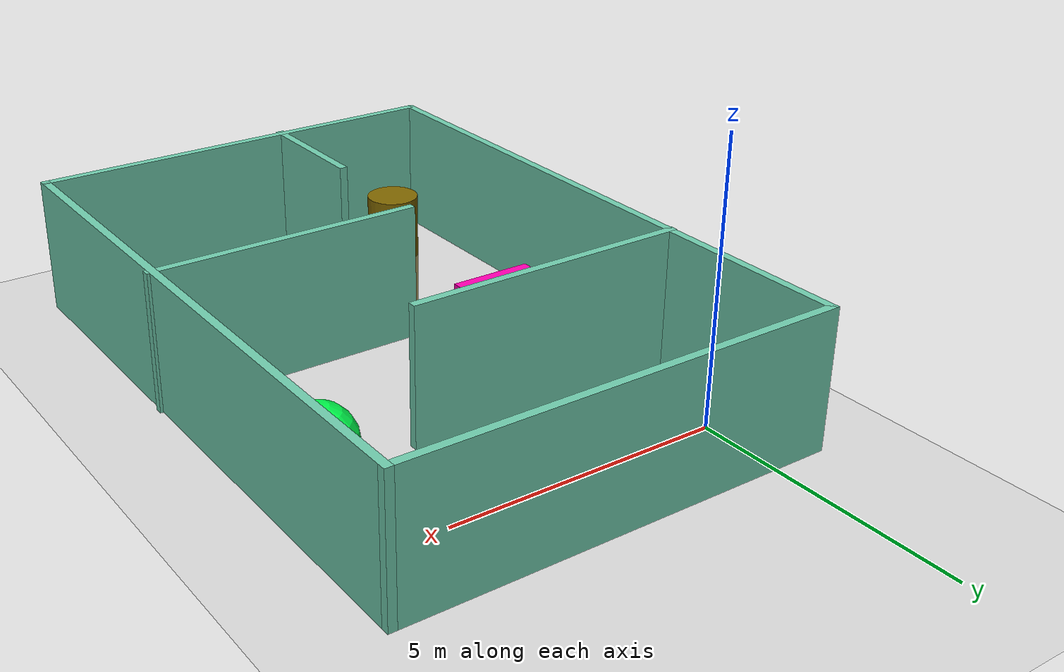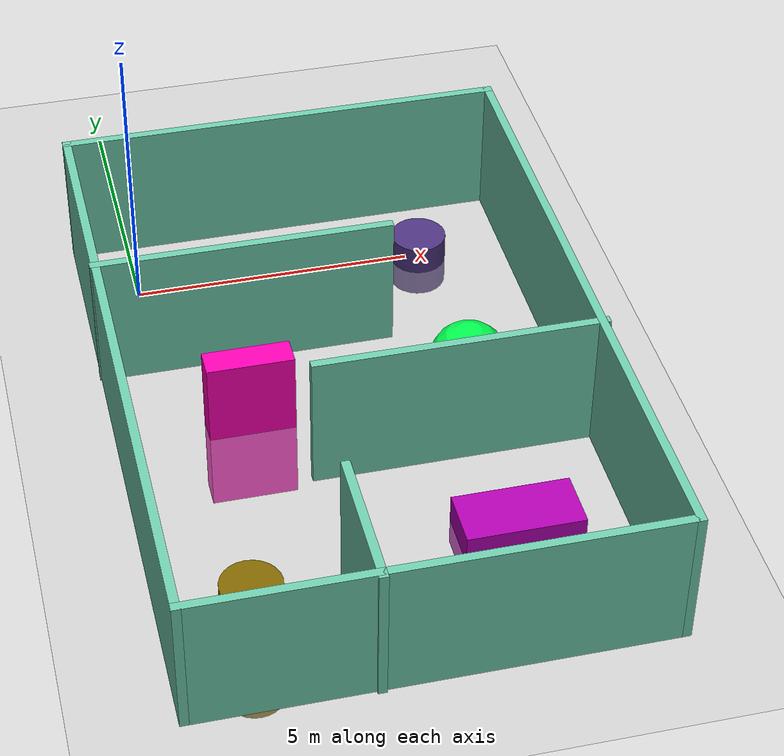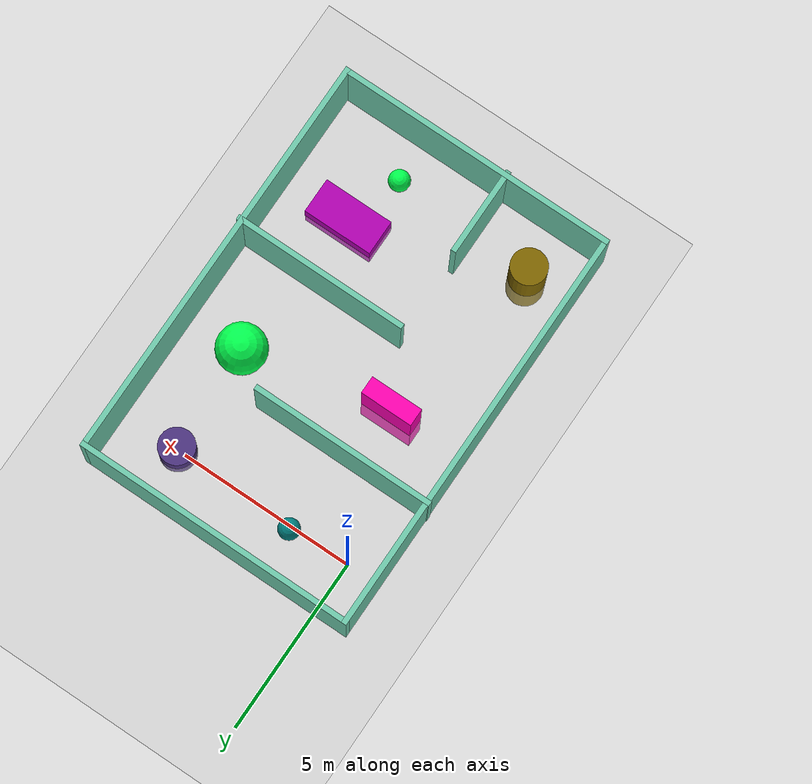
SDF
<sdf version="1.7">
 <world name="default">
  <light name="sun" type="directional">
   <pose>0 0 10 0 -0 0</pose>
   <diffuse>0.8 0.8 0.8 1</diffuse>
   <specular>0.2 0.2 0.2 1</specular>
   <attenuation>
    <range>1000</range>
    <constant>0.9</constant>
    <linear>0.01</linear>
    <quadratic>0.001</quadratic>
   </attenuation>
   <direction>-0.5 0.1 -0.9</direction>
   <spot><inner_angle>0</inner_angle><outer_angle>0</outer_angle><falloff>0</falloff></spot>
  </light>
  <model name="ground_plane">
   <static>1</static>
   <link name="link">
    <collision name="collision">
     <geometry><plane><normal>0 0 1</normal><size>100 100</size></plane></geometry>
     <surface><friction><ode><mu>100</mu><mu2>50</mu2></ode></friction></surface>
    </collision>
    <visual name="visual">
     <cast_shadows>0</cast_shadows>
     <geometry><plane><normal>0 0 1</normal><size>100 100</size></plane></geometry>
     <material>
      <script><uri>file://media/materials/scripts/gazebo.material</uri><name>Gazebo/Grey</name></script>
     </material>
    </visual>
   </link>
  </model>
  <gravity>0 0 -9.8</gravity>
  <magnetic_field>6e-06 2.3e-05 -4.2e-05</magnetic_field>
  <atmosphere type="adiabatic"/>
  <physics type="ode">
   <max_step_size>0.001</max_step_size>
   <real_time_factor>1</real_time_factor>
   <real_time_update_rate>1000</real_time_update_rate>
  </physics>
  <scene><ambient>0.4 0.4 0.4 1</ambient><background>0.7 0.7 0.7 1</background><shadows>1</shadows></scene>
  <spherical_coordinates>
   <surface_model>EARTH_WGS84</surface_model>
   <latitude_deg>0</latitude_deg>
   <longitude_deg>0</longitude_deg>
   <elevation>0</elevation>
   <heading_deg>0</heading_deg>
  </spherical_coordinates>
  <model name="purple_box">
   <link name="link">
    <inertial>
     <mass>1</mass>
     <inertia>
      <ixx>0.166667</ixx>
      <ixy>0</ixy>
      <ixz>0</ixz>
      <iyy>0.166667</iyy>
      <iyz>0</iyz>
      <izz>0.166667</izz>
     </inertia>
    </inertial>
    <visual name="visual">
     <geometry><box><size>2 1 1</size></box></geometry>
     <material>
      <script><name>Gazebo/Grey</name><uri>file://media/materials/scripts/gazebo.material</uri></script>
      <shader type="pixel"><normal_map>__default__</normal_map></shader>
      <ambient>0 1 1 1</ambient>
      <diffuse>0.7 0 0.7 1</diffuse>
      <specular>0.01 0.01 0.01 1</specular>
      <emissive>0 0 0 1</emissive>
     </material>
     <pose>0 -0.5 0 0 -0 0</pose>
    </visual>
    <collision name="collision">
     <pose>0 -0.5 0 0 -0 0</pose>
     <geometry><box><size>2 1 1</size></box></geometry>
     <surface>
      <friction>
       <ode><mu>1</mu><mu2>1</mu2><fdir1>0 0 0</fdir1><slip1>0</slip1><slip2>0</slip2></ode>
       <torsional>
        <coefficient>1</coefficient>
        <patch_radius>0</patch_radius>
        <surface_radius>0</surface_radius>
        <use_patch_radius>1</use_patch_radius>
        <ode><slip>0</slip></ode>
       </torsional>
      </friction>
      <bounce><restitution_coefficient>0</restitution_coefficient><threshold>1e+06</threshold></bounce>
      <contact>
       <collide_without_contact>0</collide_without_contact>
       <collide_without_contact_bitmask>1</collide_without_contact_bitmask>
       <collide_bitmask>1</collide_bitmask>
       <ode>
        <soft_cfm>0</soft_cfm>
        <soft_erp>0.2</soft_erp>
        <kp>1e+13</kp>
        <kd>1</kd>
        <max_vel>0.01</max_vel>
        <min_depth>0</min_depth>
       </ode>
       <bullet>
        <split_impulse>1</split_impulse>
        <split_impulse_penetration_threshold>-0.01</split_impulse_penetration_threshold>
        <soft_cfm>0</soft_cfm>
        <soft_erp>0.2</soft_erp>
        <kp>1e+13</kp>
        <kd>1</kd>
       </bullet>
      </contact>
     </surface>
    </collision>
   </link>
   <static>0</static>
   <pose>5.02659 -6.90726 0 0 -0 0</pose>
  </model>
  <model name="pink_box">
   <link name="link">
    <inertial>
     <mass>1</mass>
     <inertia>
      <ixx>0.166667</ixx>
      <ixy>0</ixy>
      <ixz>0</ixz>
      <iyy>0.166667</iyy>
      <iyz>0</iyz>
      <izz>0.166667</izz>
     </inertia>
    </inertial>
    <visual name="visual">
     <geometry><box><size>1.5 0.5 3</size></box></geometry>
     <material>
      <script><name>Gazebo/Grey</name><uri>file://media/materials/scripts/gazebo.material</uri></script>
      <shader type="pixel"><normal_map>__default__</normal_map></shader>
      <ambient>1 0.1 0.8 0.7</ambient>
      <diffuse>1 0 0.7 1</diffuse>
      <specular>0.01 0.11 0.01 1</specular>
      <emissive>0 0 0 1</emissive>
     </material>
    </visual>
    <collision name="collision">
     <geometry><box><size>1.5 0.5 3</size></box></geometry>
     <surface>
      <friction>
       <ode><mu>1</mu><mu2>1</mu2><fdir1>0 0 0</fdir1><slip1>0</slip1><slip2>0</slip2></ode>
       <torsional>
        <coefficient>1</coefficient>
        <patch_radius>0</patch_radius>
        <surface_radius>0</surface_radius>
        <use_patch_radius>1</use_patch_radius>
        <ode><slip>0</slip></ode>
       </torsional>
      </friction>
      <bounce><restitution_coefficient>0</restitution_coefficient><threshold>1e+06</threshold></bounce>
      <contact>
       <collide_without_contact>0</collide_without_contact>
       <collide_without_contact_bitmask>1</collide_without_contact_bitmask>
       <collide_bitmask>1</collide_bitmask>
       <ode>
        <soft_cfm>0</soft_cfm>
        <soft_erp>0.2</soft_erp>
        <kp>1e+13</kp>
        <kd>1</kd>
        <max_vel>0.01</max_vel>
        <min_depth>0</min_depth>
       </ode>
       <bullet>
        <split_impulse>1</split_impulse>
        <split_impulse_penetration_threshold>-0.01</split_impulse_penetration_threshold>
        <soft_cfm>0</soft_cfm>
        <soft_erp>0.2</soft_erp>
        <kp>1e+13</kp>
        <kd>1</kd>
       </bullet>
      </contact>
     </surface>
    </collision>
   </link>
   <static>0</static>
   <pose>1.31029 -3.89207 0 0 -0 0</pose>
  </model>
  <model name="skin_primastic">
   <link name="link">
    <inertial>
     <mass>1</mass>
     <inertia><ixx>0.145833</ixx><ixy>0</ixy><ixz>0</ixz><iyy>0.145833</iyy><iyz>0</iyz><izz>0.125</izz></inertia>
    </inertial>
    <visual name="visual">
     <geometry><cylinder><radius>0.5</radius><length>1</length></cylinder></geometry>
     <material>
      <script><name>Gazebo/Grey</name><uri>file://media/materials/scripts/gazebo.material</uri></script>
      <shader type="pixel"><normal_map>__default__</normal_map></shader>
      <ambient>0.3 0.2 0.5 0</ambient>
      <diffuse>0.7 0.7 0.7 1</diffuse>
      <specular>0.01 0.01 0.01 1</specular>
      <emissive>0 0 0 1</emissive>
     </material>
    </visual>
    <collision name="collision">
     <geometry><cylinder><radius>0.5</radius><length>1</length></cylinder></geometry>
     <surface>
      <friction>
       <ode><mu>1</mu><mu2>1</mu2><fdir1>0 0 0</fdir1><slip1>0</slip1><slip2>0</slip2></ode>
       <torsional>
        <coefficient>1</coefficient>
        <patch_radius>0</patch_radius>
        <surface_radius>0</surface_radius>
        <use_patch_radius>1</use_patch_radius>
        <ode><slip>0</slip></ode>
       </torsional>
      </friction>
      <bounce><restitution_coefficient>0</restitution_coefficient><threshold>1e+06</threshold></bounce>
      <contact>
       <collide_without_contact>0</collide_without_contact>
       <collide_without_contact_bitmask>1</collide_without_contact_bitmask>
       <collide_bitmask>1</collide_bitmask>
       <ode>
        <soft_cfm>0</soft_cfm>
        <soft_erp>0.2</soft_erp>
        <kp>1e+13</kp>
        <kd>1</kd>
        <max_vel>0.01</max_vel>
        <min_depth>0</min_depth>
       </ode>
       <bullet>
        <split_impulse>1</split_impulse>
        <split_impulse_penetration_threshold>-0.01</split_impulse_penetration_threshold>
        <soft_cfm>0</soft_cfm>
        <soft_erp>0.2</soft_erp>
        <kp>1e+13</kp>
        <kd>1</kd>
       </bullet>
      </contact>
     </surface>
    </collision>
   </link>
   <static>0</static>
   <pose>5.25099 -0.022483 0 0 -0 0</pose>
  </model>
  <model name="green_box_03">
   <link name="link">
    <inertial>
     <mass>1</mass>
     <inertia><ixx>0.1</ixx><ixy>0</ixy><ixz>0</ixz><iyy>0.1</iyy><iyz>0</iyz><izz>0.1</izz></inertia>
    </inertial>
    <visual name="visual">
     <geometry><sphere><radius>0.3</radius></sphere></geometry>
     <material>
      <script><name>Gazebo/Grey</name><uri>file://media/materials/scripts/gazebo.material</uri></script>
      <shader type="pixel"><normal_map>__default__</normal_map></shader>
      <ambient>0 0.5 0.5 1</ambient>
      <diffuse>0.7 0.7 0.7 1</diffuse>
      <specular>0.01 0.01 0.01 1</specular>
      <emissive>0 0 0 1</emissive>
     </material>
    </visual>
    <collision name="collision">
     <geometry><sphere><radius>0.3</radius></sphere></geometry>
     <surface>
      <friction>
       <ode><mu>1</mu><mu2>1</mu2><fdir1>0 0 0</fdir1><slip1>0</slip1><slip2>0</slip2></ode>
       <torsional>
        <coefficient>1</coefficient>
        <patch_radius>0</patch_radius>
        <surface_radius>0</surface_radius>
        <use_patch_radius>1</use_patch_radius>
        <ode><slip>0</slip></ode>
       </torsional>
      </friction>
      <bounce><restitution_coefficient>0</restitution_coefficient><threshold>1e+06</threshold></bounce>
      <contact>
       <collide_without_contact>0</collide_without_contact>
       <collide_without_contact_bitmask>1</collide_without_contact_bitmask>
       <collide_bitmask>1</collide_bitmask>
       <ode>
        <soft_cfm>0</soft_cfm>
        <soft_erp>0.2</soft_erp>
        <kp>1e+13</kp>
        <kd>1</kd>
        <max_vel>0.01</max_vel>
        <min_depth>0</min_depth>
       </ode>
       <bullet>
        <split_impulse>1</split_impulse>
        <split_impulse_penetration_threshold>-0.01</split_impulse_penetration_threshold>
        <soft_cfm>0</soft_cfm>
        <soft_erp>0.2</soft_erp>
        <kp>1e+13</kp>
        <kd>1</kd>
       </bullet>
      </contact>
     </surface>
    </collision>
   </link>
   <static>0</static>
   <pose>1.74657 0.065616 0 0 -0 0</pose>
  </model>
  <model name="green_ball_clone">
   <link name="link">
    <inertial>
     <mass>1</mass>
     <inertia><ixx>0.1</ixx><ixy>0</ixy><ixz>0</ixz><iyy>0.1</iyy><iyz>0</iyz><izz>0.1</izz></inertia>
    </inertial>
    <visual name="visual">
     <geometry><sphere><radius>0.3</radius></sphere></geometry>
     <material>
      <script><name>Gazebo/Grey</name><uri>file://media/materials/scripts/gazebo.material</uri></script>
      <shader type="pixel"><normal_map>__default__</normal_map></shader>
      <ambient>0 1 0.3 1</ambient>
      <diffuse>0.7 0.7 0.7 1</diffuse>
      <specular>0.01 0.01 0.01 1</specular>
      <emissive>0 0 0 1</emissive>
     </material>
    </visual>
    <collision name="collision">
     <geometry><sphere><radius>0.3</radius></sphere></geometry>
     <surface>
      <friction>
       <ode><mu>1</mu><mu2>1</mu2><fdir1>0 0 0</fdir1><slip1>0</slip1><slip2>0</slip2></ode>
       <torsional>
        <coefficient>1</coefficient>
        <patch_radius>0</patch_radius>
        <surface_radius>0</surface_radius>
        <use_patch_radius>1</use_patch_radius>
        <ode><slip>0</slip></ode>
       </torsional>
      </friction>
      <bounce><restitution_coefficient>0</restitution_coefficient><threshold>1e+06</threshold></bounce>
      <contact>
       <collide_without_contact>0</collide_without_contact>
       <collide_without_contact_bitmask>1</collide_without_contact_bitmask>
       <collide_bitmask>1</collide_bitmask>
       <ode>
        <soft_cfm>0</soft_cfm>
        <soft_erp>0.2</soft_erp>
        <kp>1e+13</kp>
        <kd>1</kd>
        <max_vel>0.01</max_vel>
        <min_depth>0</min_depth>
       </ode>
       <bullet>
        <split_impulse>1</split_impulse>
        <split_impulse_penetration_threshold>-0.01</split_impulse_penetration_threshold>
        <soft_cfm>0</soft_cfm>
        <soft_erp>0.2</soft_erp>
        <kp>1e+13</kp>
        <kd>1</kd>
       </bullet>
      </contact>
     </surface>
    </collision>
   </link>
   <static>0</static>
   <pose>4.53037 -9.03745 0 0 -0 0</pose>
  </model>
  <model name="maplevel2">
   <pose>3.00962 -4.35923 0 0 -0 0</pose>
   <link name="Wall_30">
    <collision name="Wall_30_Collision">
     <geometry><box><size>11.75 0.15 2.5</size></box></geometry>
     <pose>0 0 1.25 0 -0 0</pose>
    </collision>
    <visual name="Wall_30_Visual">
     <pose>0 0 1.25 0 -0 0</pose>
     <geometry><box><size>11.75 0.15 2.5</size></box></geometry>
     <material>
      <script><uri>file://media/materials/scripts/gazebo.material</uri><name>Gazebo/Grey</name></script>
      <ambient>0.435294 0.796078 0.67451 1</ambient>
     </material>
     <meta><layer>0</layer></meta>
    </visual>
    <pose>-3.94031 0.025487 0 0 -0 -1.5708</pose>
   </link>
   <link name="Wall_31">
    <collision name="Wall_31_Collision">
     <geometry><box><size>8 0.15 2.5</size></box></geometry>
     <pose>0 0 1.25 0 -0 0</pose>
    </collision>
    <visual name="Wall_31_Visual">
     <pose>0 0 1.25 0 -0 0</pose>
     <geometry><box><size>8 0.15 2.5</size></box></geometry>
     <material>
      <script><uri>file://media/materials/scripts/gazebo.material</uri><name>Gazebo/Grey</name></script>
      <ambient>0.435294 0.796078 0.67451 1</ambient>
     </material>
     <meta><layer>0</layer></meta>
    </visual>
    <pose>-0.015308 -5.77451 0 0 -0 0</pose>
   </link>
   <link name="Wall_35">
    <collision name="Wall_35_Collision">
     <geometry><box><size>11.75 0.15 2.5</size></box></geometry>
     <pose>0 0 1.25 0 -0 0</pose>
    </collision>
    <visual name="Wall_35_Visual">
     <pose>0 0 1.25 0 -0 0</pose>
     <geometry><box><size>11.75 0.15 2.5</size></box></geometry>
     <material>
      <script><uri>file://media/materials/scripts/gazebo.material</uri><name>Gazebo/Grey</name></script>
      <ambient>0.435294 0.796078 0.67451 1</ambient>
     </material>
     <meta><layer>0</layer></meta>
    </visual>
    <pose>3.90969 0.025487 0 0 -0 1.5708</pose>
   </link>
   <link name="Wall_36">
    <collision name="Wall_36_Collision">
     <geometry><box><size>8 0.15 2.5</size></box></geometry>
     <pose>0 0 1.25 0 -0 0</pose>
    </collision>
    <visual name="Wall_36_Visual">
     <pose>0 0 1.25 0 -0 0</pose>
     <geometry><box><size>8 0.15 2.5</size></box></geometry>
     <material>
      <script><uri>file://media/materials/scripts/gazebo.material</uri><name>Gazebo/Grey</name></script>
      <ambient>0.435294 0.796078 0.67451 1</ambient>
     </material>
     <meta><layer>0</layer></meta>
    </visual>
    <pose>-0.015308 5.82549 0 0 -0 3.14159</pose>
   </link>
   <link name="Wall_38">
    <collision name="Wall_38_Collision">
     <geometry><box><size>5.25 0.15 2.5</size></box></geometry>
     <pose>0 0 1.25 0 -0 0</pose>
    </collision>
    <visual name="Wall_38_Visual">
     <pose>0 0 1.25 0 -0 0</pose>
     <geometry><box><size>5.25 0.15 2.5</size></box></geometry>
     <material>
      <script><uri>file://media/materials/scripts/gazebo.material</uri><name>Gazebo/Grey</name></script>
      <ambient>0.435294 0.796078 0.67451 1</ambient>
     </material>
     <meta><layer>0</layer></meta>
    </visual>
    <pose>-1.41205 2.22937 0 0 -0 0</pose>
   </link>
   <link name="Wall_40">
    <collision name="Wall_40_Collision">
     <geometry><box><size>5 0.15 2.5</size></box></geometry>
     <pose>0 0 1.25 0 -0 0</pose>
    </collision>
    <visual name="Wall_40_Visual">
     <pose>0 0 1.25 0 -0 0</pose>
     <geometry><box><size>5 0.15 2.5</size></box></geometry>
     <material>
      <script><uri>file://media/materials/scripts/gazebo.material</uri><name>Gazebo/Grey</name></script>
      <ambient>0.435294 0.796078 0.67451 1</ambient>
     </material>
     <meta><layer>0</layer></meta>
    </visual>
    <pose>1.53705 -1.09195 0 0 -0 3.14159</pose>
   </link>
   <link name="Wall_42">
    <collision name="Wall_42_Collision">
     <geometry><box><size>2.5 0.15 2.5</size></box></geometry>
     <pose>0 0 1.25 0 -0 0</pose>
    </collision>
    <visual name="Wall_42_Visual">
     <pose>0 0 1.25 0 -0 0</pose>
     <geometry><box><size>2.5 0.15 2.5</size></box></geometry>
     <material>
      <script><uri>file://media/materials/scripts/gazebo.material</uri><name>Gazebo/Grey</name></script>
      <ambient>0.435294 0.796078 0.67451 1</ambient>
     </material>
     <meta><layer>0</layer></meta>
    </visual>
    <pose>-0.928401 -4.65049 0 0 -0 1.5708</pose>
   </link>
   <static>1</static>
  </model>
  <model name="green_ball2">
   <link name="link">
    <inertial>
     <mass>1</mass>
     <inertia><ixx>0.1</ixx><ixy>0</ixy><ixz>0</ixz><iyy>0.1</iyy><iyz>0</iyz><izz>0.1</izz></inertia>
    </inertial>
    <visual name="visual">
     <geometry><sphere><radius>0.7</radius></sphere></geometry>
     <material>
      <script><name>Gazebo/Grey</name><uri>file://media/materials/scripts/gazebo.material</uri></script>
      <shader type="pixel"><normal_map>__default__</normal_map></shader>
      <ambient>0 1 0.3 1</ambient>
      <diffuse>0.7 0.7 0.7 1</diffuse>
      <specular>0.01 0.01 0.01 1</specular>
      <emissive>0 0 0 1</emissive>
     </material>
    </visual>
    <collision name="collision">
     <geometry><sphere><radius>0.7</radius></sphere></geometry>
     <surface>
      <friction>
       <ode><mu>1</mu><mu2>1</mu2><fdir1>0 0 0</fdir1><slip1>0</slip1><slip2>0</slip2></ode>
       <torsional>
        <coefficient>1</coefficient>
        <patch_radius>0</patch_radius>
        <surface_radius>0</surface_radius>
        <use_patch_radius>1</use_patch_radius>
        <ode><slip>0</slip></ode>
       </torsional>
      </friction>
      <bounce><restitution_coefficient>0</restitution_coefficient><threshold>1e+06</threshold></bounce>
      <contact>
       <collide_without_contact>0</collide_without_contact>
       <collide_without_contact_bitmask>1</collide_without_contact_bitmask>
       <collide_bitmask>1</collide_bitmask>
       <ode>
        <soft_cfm>0</soft_cfm>
        <soft_erp>0.2</soft_erp>
        <kp>1e+13</kp>
        <kd>1</kd>
        <max_vel>0.01</max_vel>
        <min_depth>0</min_depth>
       </ode>
       <bullet>
        <split_impulse>1</split_impulse>
        <split_impulse_penetration_threshold>-0.01</split_impulse_penetration_threshold>
        <soft_cfm>0</soft_cfm>
        <soft_erp>0.2</soft_erp>
        <kp>1e+13</kp>
        <kd>1</kd>
       </bullet>
      </contact>
     </surface>
    </collision>
   </link>
   <static>0</static>
   <pose>5.3895 -3.10235 0 0 -0 0</pose>
  </model>
  <model name="orange_primastic2.2">
   <link name="link">
    <inertial>
     <mass>1</mass>
     <inertia><ixx>0.145833</ixx><ixy>0</ixy><ixz>0</ixz><iyy>0.145833</iyy><iyz>0</iyz><izz>0.125</izz></inertia>
    </inertial>
    <visual name="visual">
     <geometry><cylinder><radius>0.5</radius><length>2.5</length></cylinder></geometry>
     <material>
      <script><name>Gazebo/Grey</name><uri>file://media/materials/scripts/gazebo.material</uri></script>
      <shader type="pixel"><normal_map>__default__</normal_map></shader>
      <ambient>0.5 0.4 0 1</ambient>
      <diffuse>0.7 0.7 0.7 1</diffuse>
      <specular>0.01 0.01 0.01 1</specular>
      <emissive>0 0 0 1</emissive>
     </material>
    </visual>
    <collision name="collision">
     <geometry><cylinder><radius>0.5</radius><length>2.5</length></cylinder></geometry>
     <surface>
      <friction>
       <ode><mu>1</mu><mu2>1</mu2><fdir1>0 0 0</fdir1><slip1>0</slip1><slip2>0</slip2></ode>
       <torsional>
        <coefficient>1</coefficient>
        <patch_radius>0</patch_radius>
        <surface_radius>0</surface_radius>
        <use_patch_radius>1</use_patch_radius>
        <ode><slip>0</slip></ode>
       </torsional>
      </friction>
      <bounce><restitution_coefficient>0</restitution_coefficient><threshold>1e+06</threshold></bounce>
      <contact>
       <collide_without_contact>0</collide_without_contact>
       <collide_without_contact_bitmask>1</collide_without_contact_bitmask>
       <collide_bitmask>1</collide_bitmask>
       <ode>
        <soft_cfm>0</soft_cfm>
        <soft_erp>0.2</soft_erp>
        <kp>1e+13</kp>
        <kd>1</kd>
        <max_vel>0.01</max_vel>
        <min_depth>0</min_depth>
       </ode>
       <bullet>
        <split_impulse>1</split_impulse>
        <split_impulse_penetration_threshold>-0.01</split_impulse_penetration_threshold>
        <soft_cfm>0</soft_cfm>
        <soft_erp>0.2</soft_erp>
        <kp>1e+13</kp>
        <kd>1</kd>
       </bullet>
      </contact>
     </surface>
    </collision>
   </link>
   <static>0</static>
   <pose>0.39475 -8.76929 0 0 -0 0</pose>
  </model>
 </world>
</sdf>
